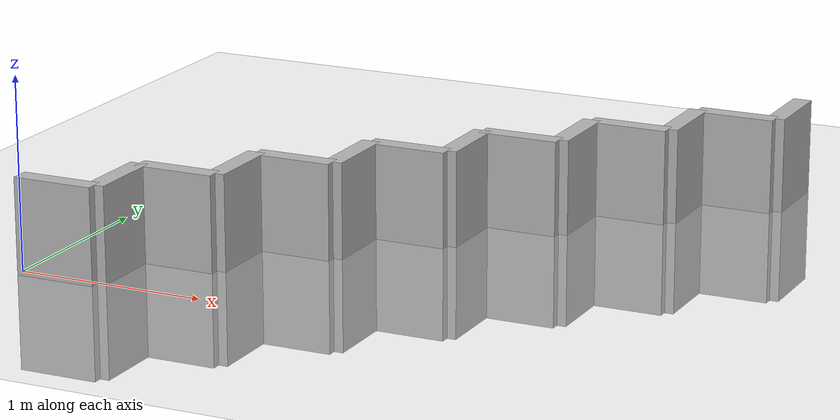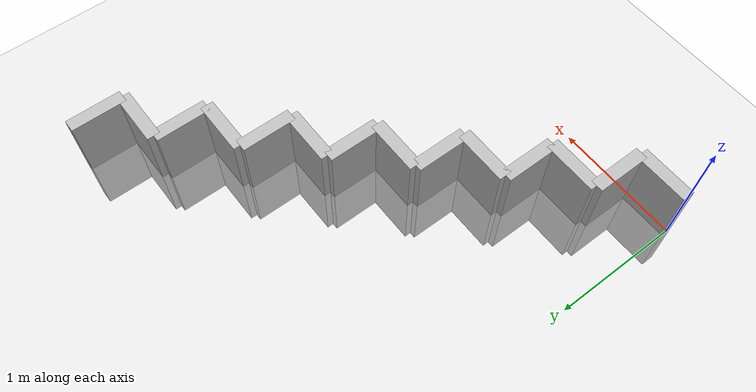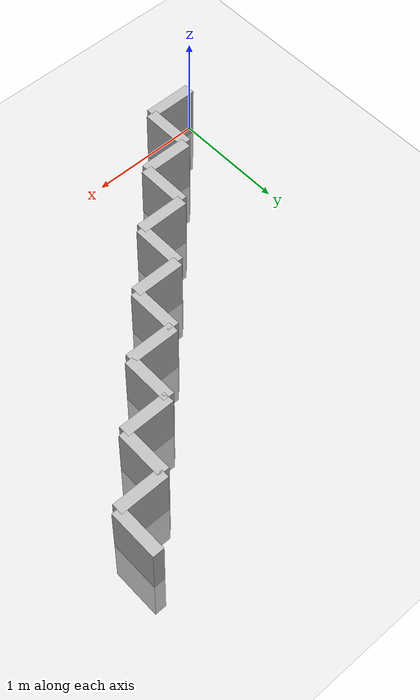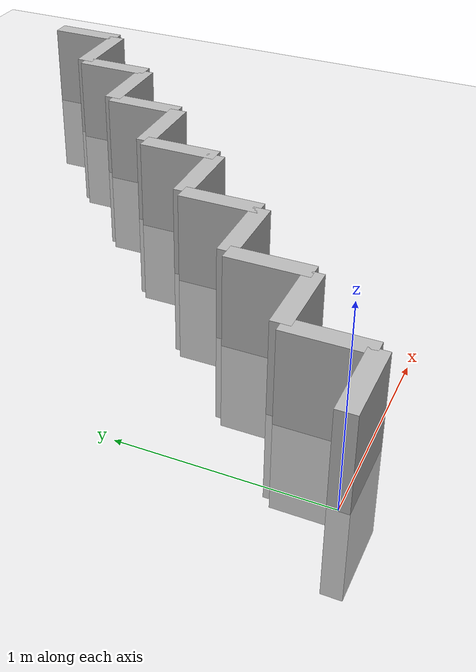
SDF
<?xml version="1.0" ?>
<sdf version="1.6">
  <world name="default">
    <include>
      <uri>model://ground_plane</uri>
    </include>
    <include>
      <uri>model://sun</uri>
    </include>

    <model name="wall_0">
      <static>true</static>
      <link name="link">
        <pose>0.21428571428571427 0 0 0 0 0</pose>
        <collision name="collision">
          <geometry>
            <box>
              <size>0.42857142857142855 0.1 1.0</size>
            </box>
          </geometry>
        </collision>
        <visual name="visual">
          <geometry>
            <box>
              <size>0.42857142857142855 0.1 1.0</size>
            </box>
          </geometry>
        </visual>
      </link>
    </model>

    <model name="wall_1">
      <static>true</static>
      <link name="link">
        <pose>0.42857142857142855 0.21428571428571427 0 0 0 1.57</pose>
        <collision name="collision">
          <geometry>
            <box>
              <size>0.42857142857142855 0.1 1.0</size>
            </box>
          </geometry>
        </collision>
        <visual name="visual">
          <geometry>
            <box>
              <size>0.42857142857142855 0.1 1.0</size>
            </box>
          </geometry>
        </visual>
      </link>
    </model>

    <model name="wall_2">
      <static>true</static>
      <link name="link">
        <pose>0.6428571428571428 0.42857142857142855 0 0 0 0</pose>
        <collision name="collision">
          <geometry>
            <box>
              <size>0.42857142857142855 0.1 1.0</size>
            </box>
          </geometry>
        </collision>
        <visual name="visual">
          <geometry>
            <box>
              <size>0.42857142857142855 0.1 1.0</size>
            </box>
          </geometry>
        </visual>
      </link>
    </model>

    <model name="wall_3">
      <static>true</static>
      <link name="link">
        <pose>0.8571428571428571 0.6428571428571428 0 0 0 1.57</pose>
        <collision name="collision">
          <geometry>
            <box>
              <size>0.42857142857142855 0.1 1.0</size>
            </box>
          </geometry>
        </collision>
        <visual name="visual">
          <geometry>
            <box>
              <size>0.42857142857142855 0.1 1.0</size>
            </box>
          </geometry>
        </visual>
      </link>
    </model>

    <model name="wall_4">
      <static>true</static>
      <link name="link">
        <pose>1.0714285714285714 0.8571428571428571 0 0 0 0</pose>
        <collision name="collision">
          <geometry>
            <box>
              <size>0.42857142857142855 0.1 1.0</size>
            </box>
          </geometry>
        </collision>
        <visual name="visual">
          <geometry>
            <box>
              <size>0.42857142857142855 0.1 1.0</size>
            </box>
          </geometry>
        </visual>
      </link>
    </model>

    <model name="wall_5">
      <static>true</static>
      <link name="link">
        <pose>1.2857142857142856 1.0714285714285714 0 0 0 1.57</pose>
        <collision name="collision">
          <geometry>
            <box>
              <size>0.42857142857142855 0.1 1.0</size>
            </box>
          </geometry>
        </collision>
        <visual name="visual">
          <geometry>
            <box>
              <size>0.42857142857142855 0.1 1.0</size>
            </box>
          </geometry>
        </visual>
      </link>
    </model>

    <model name="wall_6">
      <static>true</static>
      <link name="link">
        <pose>1.4999999999999998 1.2857142857142856 0 0 0 0</pose>
        <collision name="collision">
          <geometry>
            <box>
              <size>0.42857142857142855 0.1 1.0</size>
            </box>
          </geometry>
        </collision>
        <visual name="visual">
          <geometry>
            <box>
              <size>0.42857142857142855 0.1 1.0</size>
            </box>
          </geometry>
        </visual>
      </link>
    </model>

    <model name="wall_7">
      <static>true</static>
      <link name="link">
        <pose>1.714285714285714 1.4999999999999998 0 0 0 1.57</pose>
        <collision name="collision">
          <geometry>
            <box>
              <size>0.42857142857142855 0.1 1.0</size>
            </box>
          </geometry>
        </collision>
        <visual name="visual">
          <geometry>
            <box>
              <size>0.42857142857142855 0.1 1.0</size>
            </box>
          </geometry>
        </visual>
      </link>
    </model>

    <model name="wall_8">
      <static>true</static>
      <link name="link">
        <pose>1.9285714285714282 1.714285714285714 0 0 0 0</pose>
        <collision name="collision">
          <geometry>
            <box>
              <size>0.42857142857142855 0.1 1.0</size>
            </box>
          </geometry>
        </collision>
        <visual name="visual">
          <geometry>
            <box>
              <size>0.42857142857142855 0.1 1.0</size>
            </box>
          </geometry>
        </visual>
      </link>
    </model>

    <model name="wall_9">
      <static>true</static>
      <link name="link">
        <pose>2.1428571428571423 1.9285714285714282 0 0 0 1.57</pose>
        <collision name="collision">
          <geometry>
            <box>
              <size>0.42857142857142855 0.1 1.0</size>
            </box>
          </geometry>
        </collision>
        <visual name="visual">
          <geometry>
            <box>
              <size>0.42857142857142855 0.1 1.0</size>
            </box>
          </geometry>
        </visual>
      </link>
    </model>

    <model name="wall_10">
      <static>true</static>
      <link name="link">
        <pose>2.3571428571428568 2.1428571428571423 0 0 0 0</pose>
        <collision name="collision">
          <geometry>
            <box>
              <size>0.42857142857142855 0.1 1.0</size>
            </box>
          </geometry>
        </collision>
        <visual name="visual">
          <geometry>
            <box>
              <size>0.42857142857142855 0.1 1.0</size>
            </box>
          </geometry>
        </visual>
      </link>
    </model>

    <model name="wall_11">
      <static>true</static>
      <link name="link">
        <pose>2.571428571428571 2.3571428571428568 0 0 0 1.57</pose>
        <collision name="collision">
          <geometry>
            <box>
              <size>0.42857142857142855 0.1 1.0</size>
            </box>
          </geometry>
        </collision>
        <visual name="visual">
          <geometry>
            <box>
              <size>0.42857142857142855 0.1 1.0</size>
            </box>
          </geometry>
        </visual>
      </link>
    </model>

    <model name="wall_12">
      <static>true</static>
      <link name="link">
        <pose>2.7857142857142856 2.571428571428571 0 0 0 0</pose>
        <collision name="collision">
          <geometry>
            <box>
              <size>0.42857142857142855 0.1 1.0</size>
            </box>
          </geometry>
        </collision>
        <visual name="visual">
          <geometry>
            <box>
              <size>0.42857142857142855 0.1 1.0</size>
            </box>
          </geometry>
        </visual>
      </link>
    </model>

    <model name="wall_13">
      <static>true</static>
      <link name="link">
        <pose>3.0 2.7857142857142856 0 0 0 1.57</pose>
        <collision name="collision">
          <geometry>
            <box>
              <size>0.42857142857142855 0.1 1.0</size>
            </box>
          </geometry>
        </collision>
        <visual name="visual">
          <geometry>
            <box>
              <size>0.42857142857142855 0.1 1.0</size>
            </box>
          </geometry>
        </visual>
      </link>
    </model>

  </world>
</sdf>
